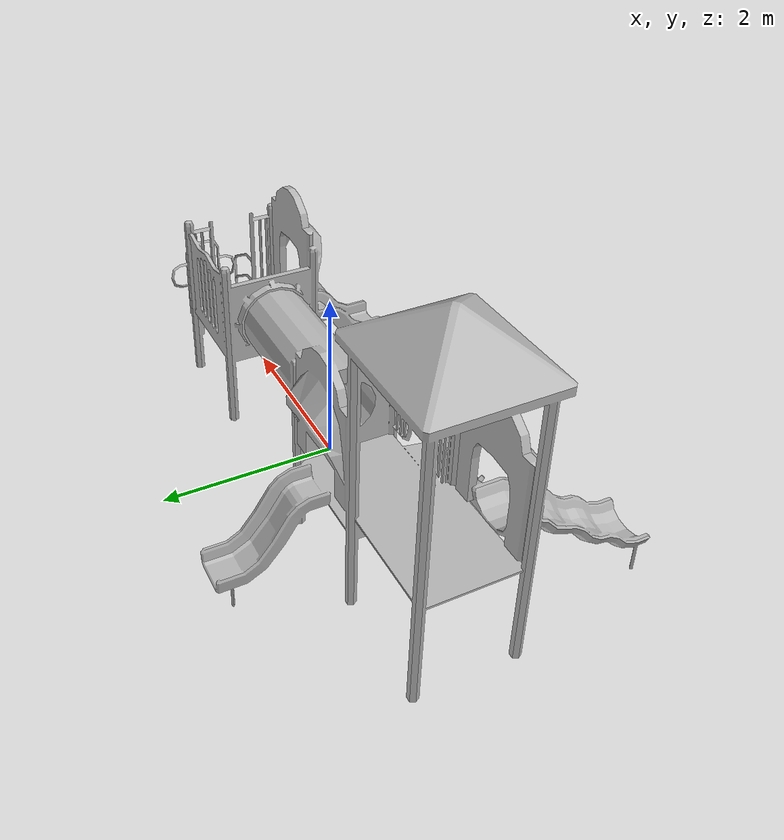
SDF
<?xml version="1.0" ?>
<sdf version="1.6">
  <model name="playground">
    <static>true</static>
    <link name="link">
      <collision name="collision">
        <geometry>
          <mesh>
            <uri>model://playground/meshes/playground.dae</uri>
            <scale>0.6 0.6 0.6</scale>
          </mesh>
        </geometry>
      </collision>
      <visual name="visual">
        <geometry>
          <mesh>
            <uri>model://playground/meshes/playground.dae</uri>
            <scale>0.6 0.6 0.6</scale>
          </mesh>
        </geometry>
      </visual>
    </link>
  </model>
</sdf>
